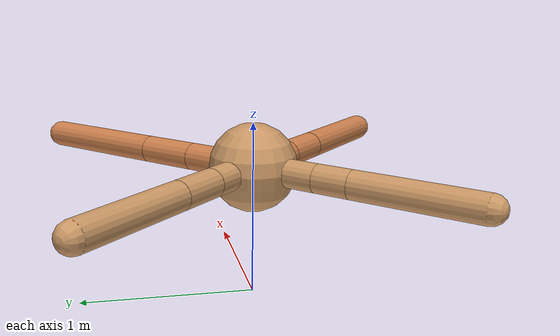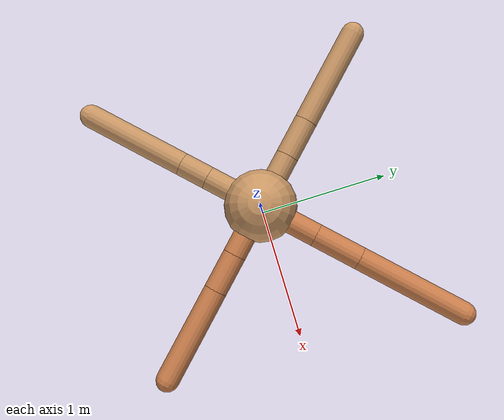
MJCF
<mujoco model="ant">
  <compiler angle="degree" coordinate="local" inertiafromgeom="true" />
  <option integrator="RK4" timestep="0.01" />
  <custom>
    <numeric data="0.0 0.0 0.55 1.0 0.0 0.0 0.0 0.0 1.0 0.0 -1.0 0.0 -1.0 0.0 1.0" name="init_qpos" />
  </custom>
  <default>
    <joint armature="1" damping="1" limited="true" />
    <geom conaffinity="0" condim="3" density="5.0" friction="1.5 0.1 0.1" margin="0.01" rgba="0.8 0.6 0.4 1" />
  </default>
  <worldbody>
    <body name="torso" pos="0 0 0.75">
      <geom name="torso_geom" pos="0 0 0" size="0.25" type="sphere" />

      <body name="front_left_leg" pos="0 0 0">
        <geom fromto="0.0 0.0 0.0 0.2997055375983651 0.2997055375983651 0.0" name="aux_1_geom" size="0.08" type="capsule" rgba=".8 .5 .3 1" />
        <body name="aux_1" pos="0.2997055375983651 0.2997055375983651 0.0">
          <joint axis="0 0 1" name="hip_1" pos="0.0 0.0 0.0" range="-40 40" type="hinge" />
          <geom fromto="0.0 0.0 0.0 0.2343741784252827 0.2343741784252827 0.0" name="left_leg_geom" size="0.08" type="capsule" rgba=".8 .5 .3 1" />
          <body pos="0.2343741784252827 0.2343741784252827 0.0" name="front_left_foot">
            <joint axis="-1 1 0" name="ankle_1" pos="0.0 0.0 0.0" range="30 100" type="hinge" />
            <geom fromto="0.0 0.0 0.0 0.5577824694719622 0.5577824694719622 0.0" name="left_ankle_geom" size="0.08" type="capsule" rgba=".8 .5 .3 1" />
          </body>
        </body>
      </body>
      <body name="front_right_leg" pos="0 0 0">
        <geom fromto="0.0 0.0 0.0 -0.2711728740103695 0.2711728740103695 0.0" name="aux_2_geom" size="0.08" type="capsule" />
        <body name="aux_2" pos="-0.2711728740103695 0.2711728740103695 0.0">
          <joint axis="0 0 1" name="hip_2" pos="0.0 0.0 0.0" range="-40 40" type="hinge" />
          <geom fromto="0.0 0.0 0.0 -0.19169387384613623 0.19169387384613623 0.0" name="right_leg_geom" size="0.08" type="capsule" />
          <body pos="-0.19169387384613623 0.19169387384613623 0.0" name="front_right_foot">
            <joint axis="1 1 0" name="ankle_2" pos="0.0 0.0 0.0" range="-100 -30" type="hinge" />
            <geom fromto="0.0 0.0 0.0 -0.490672067265084 0.490672067265084 0.0" name="right_ankle_geom" size="0.08" type="capsule" />
          </body>
        </body>
      </body>
      <body name="left_back_leg" pos="0 0 0">
        <geom fromto="0.0 0.0 0.0 -0.28545932913091493 -0.28545932913091493 0.0" name="aux_3_geom" size="0.08" type="capsule" />
        <body name="aux_3" pos="-0.28545932913091493 -0.28545932913091493 0.0">
          <joint axis="0 0 1" name="hip_3" pos="0.0 0.0 0.0" range="-40 40" type="hinge" />
          <geom fromto="0.0 0.0 0.0 -0.14229325628578915 -0.14229325628578915 0.0" name="back_leg_geom" size="0.08" type="capsule" />
          <body pos="-0.14229325628578915 -0.14229325628578915 0.0" name="left_back_foot">
            <joint axis="-1 1 0" name="ankle_3" pos="0.0 0.0 0.0" range="-100 -30" type="hinge" />
            <geom fromto="0.0 0.0 0.0 -0.4988776561723359 -0.4988776561723359 0.0" name="third_ankle_geom" size="0.08" type="capsule" />
          </body>
        </body>
      </body>
      <body name="right_back_leg" pos="0 0 0">
        <geom fromto="0.0 0.0 0.0 0.2659827637117793 -0.2659827637117793 0.0" name="aux_4_geom" size="0.08" type="capsule" rgba=".8 .5 .3 1" />
        <body name="aux_4" pos="0.2659827637117793 -0.2659827637117793 0.0">
          <joint axis="0 0 1" name="hip_4" pos="0.0 0.0 0.0" range="-40 40" type="hinge" />
          <geom fromto="0.0 0.0 0.0 0.1895396538248405 -0.1895396538248405 0.0" name="rightback_leg_geom" size="0.08" type="capsule" rgba=".8 .5 .3 1" />
          <body pos="0.1895396538248405 -0.1895396538248405 0.0" name="right_back_foot">
            <joint axis="1 1 0" name="ankle_4" pos="0.0 0.0 0.0" range="30 100" type="hinge" />
            <geom fromto="0.0 0.0 0.0 0.47538964133171513 -0.47538964133171513 0.0" name="fourth_ankle_geom" size="0.08" type="capsule" rgba=".8 .5 .3 1" />
          </body>
        </body>
      </body>
    </body>
  </worldbody>
  <actuator>
    <motor ctrllimited="true" ctrlrange="-1.0 1.0" joint="hip_4" gear="150" />
    <motor ctrllimited="true" ctrlrange="-1.0 1.0" joint="ankle_4" gear="150" />
    <motor ctrllimited="true" ctrlrange="-1.0 1.0" joint="hip_1" gear="150" />
    <motor ctrllimited="true" ctrlrange="-1.0 1.0" joint="ankle_1" gear="150" />
    <motor ctrllimited="true" ctrlrange="-1.0 1.0" joint="hip_2" gear="150" />
    <motor ctrllimited="true" ctrlrange="-1.0 1.0" joint="ankle_2" gear="150" />
    <motor ctrllimited="true" ctrlrange="-1.0 1.0" joint="hip_3" gear="150" />
    <motor ctrllimited="true" ctrlrange="-1.0 1.0" joint="ankle_3" gear="150" />
  </actuator>
</mujoco>
